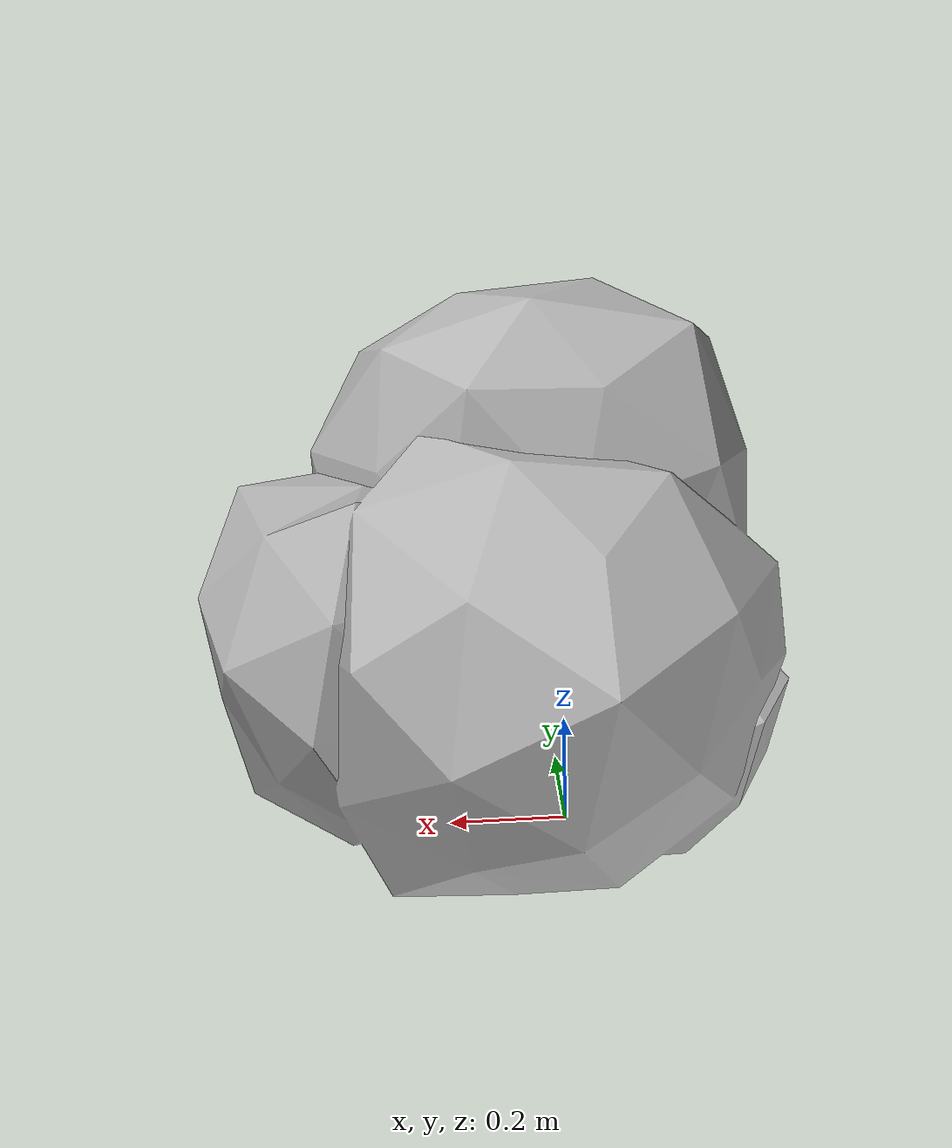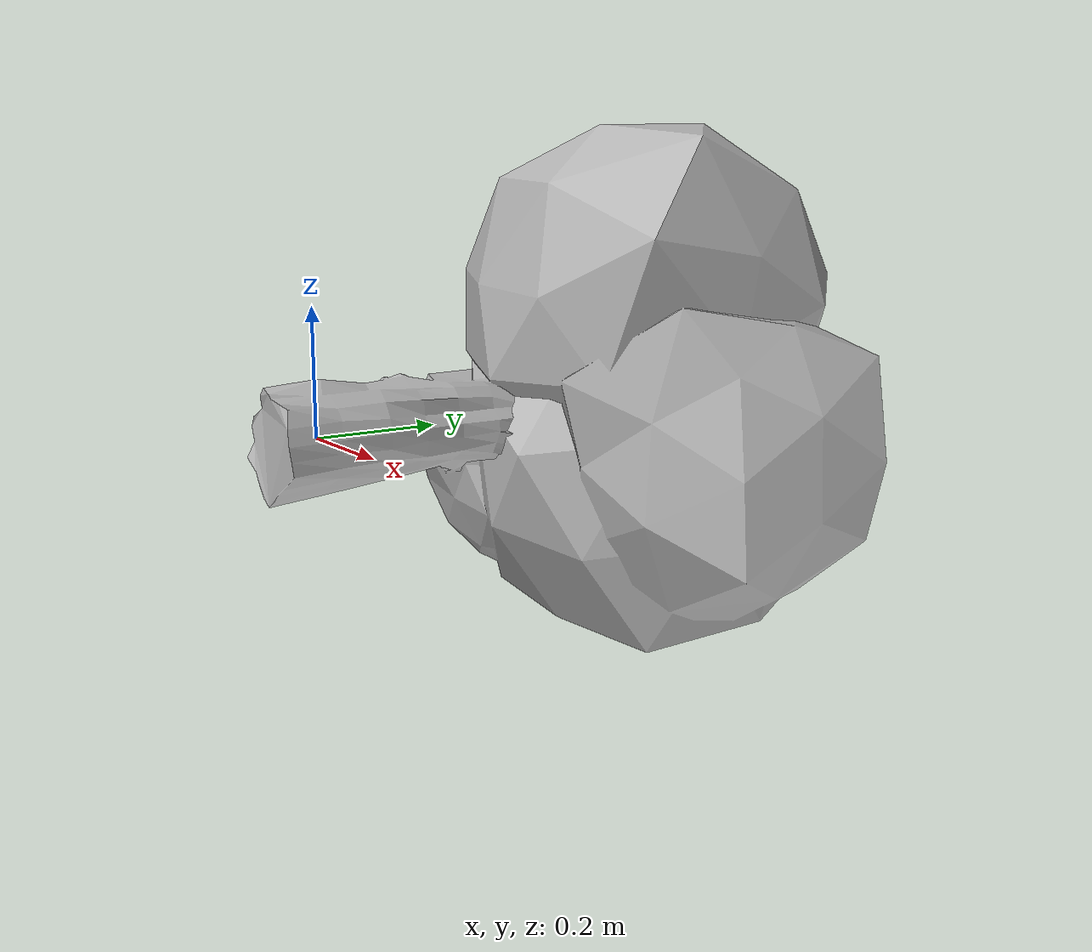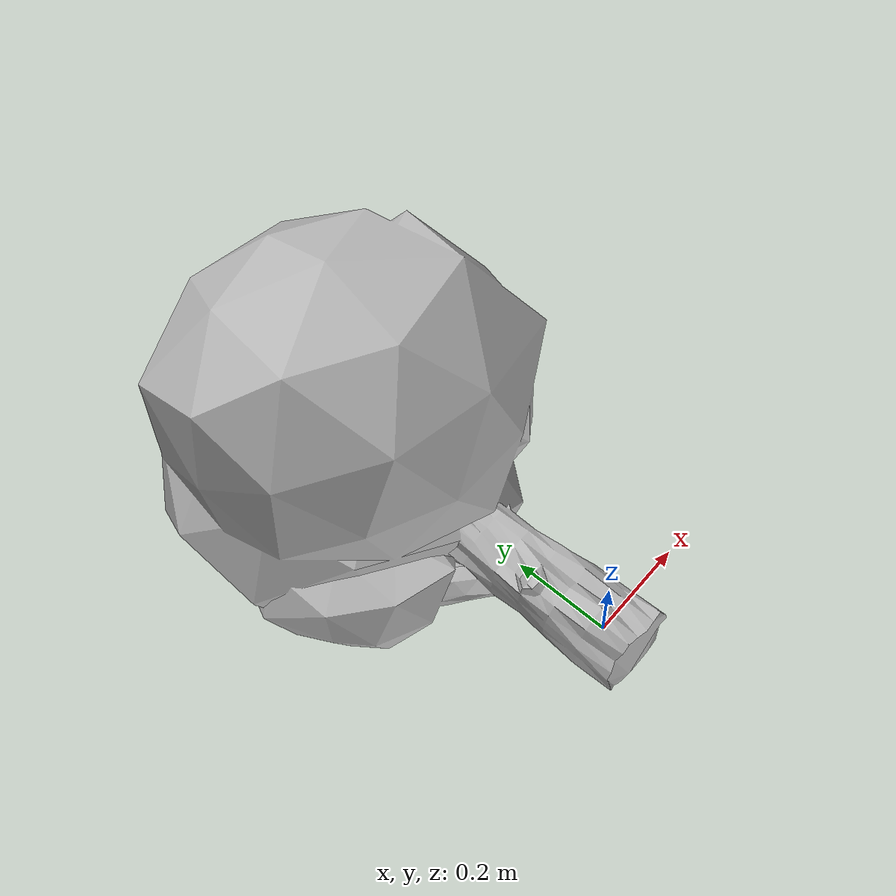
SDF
<?xml version='1.0' encoding='utf-8'?>
<sdf version="1.6">
  <model name="bush">
   <static>false</static>
    <link name="body">
      <pose>0 0 0 0 0 0</pose>

      <visual name="visual">
        <geometry>
          <mesh>
            <uri>file:///workspaces/robman-final-proj/assets/bush/tree.obj</uri>
            <scale>0.0005 0.0005 0.0005</scale>
          </mesh>
        </geometry>
      </visual>

      <collision name="collision">
        <geometry>
          <mesh>
            <uri>file:///workspaces/robman-final-proj/assets/bush/tree.obj</uri>
            <scale>0.0005 0.0005 0.0005</scale>
          </mesh>
        </geometry>

      </collision>
    </link>
  </model>
</sdf>
